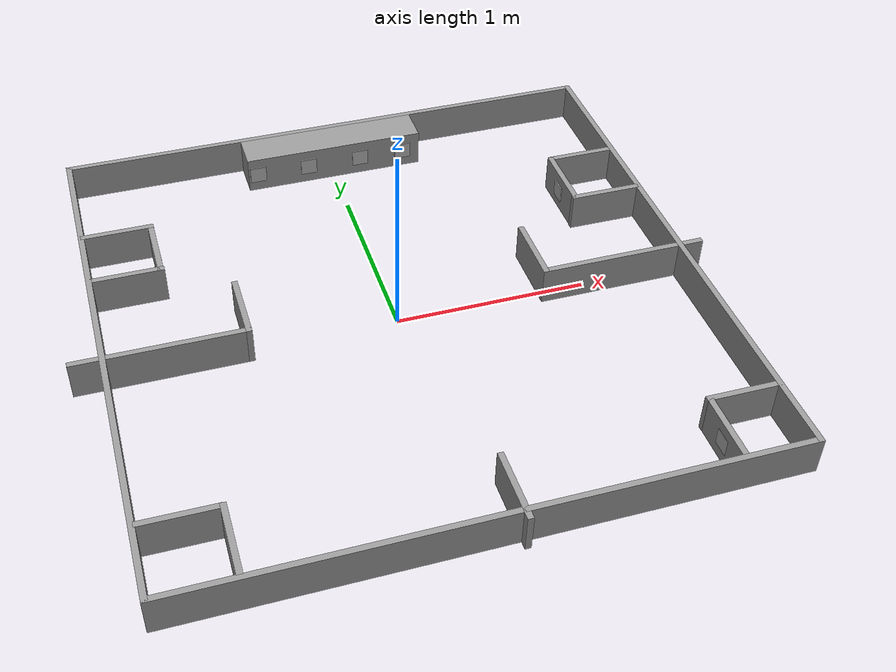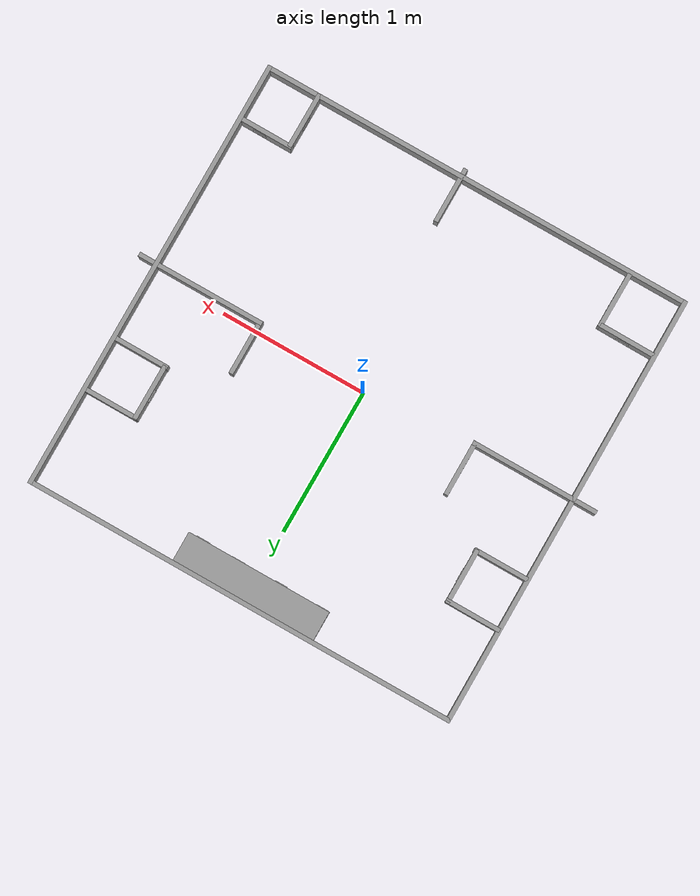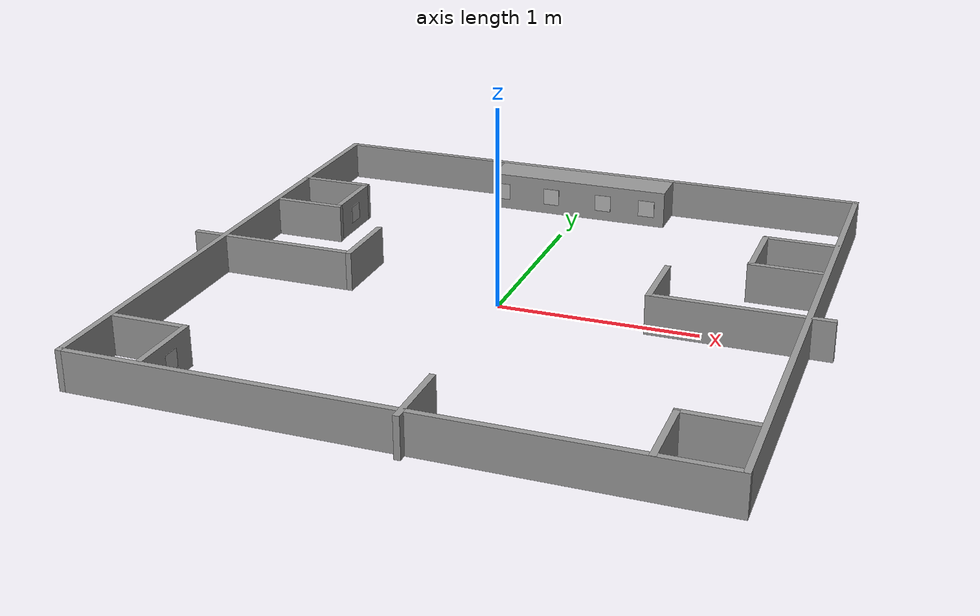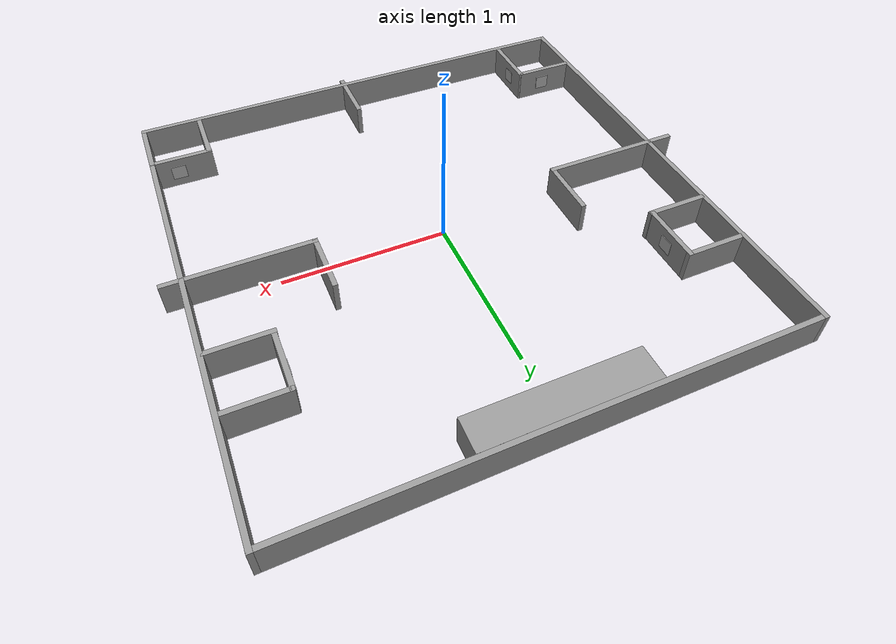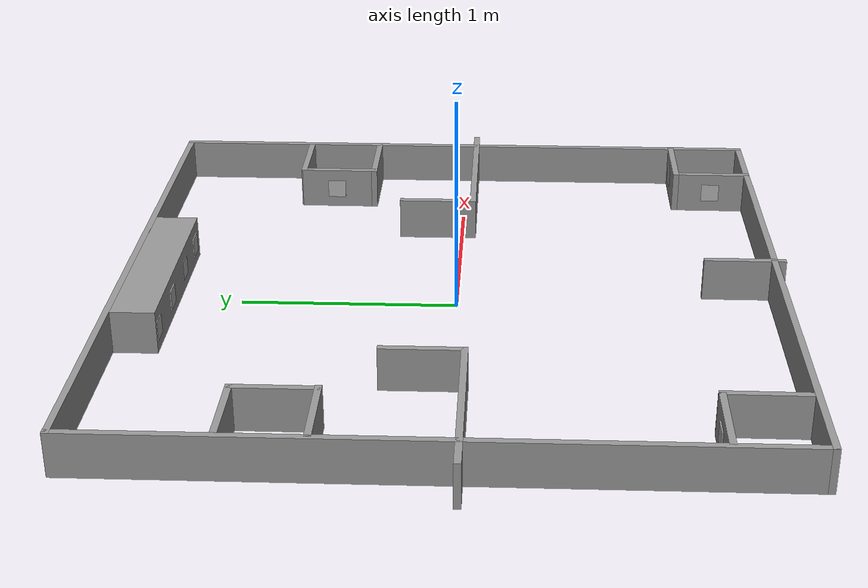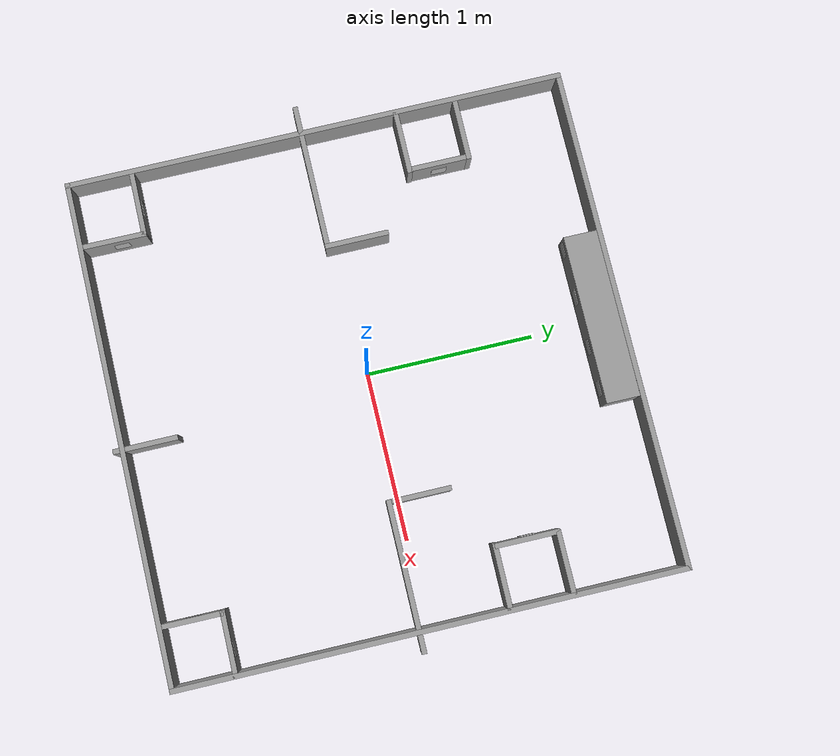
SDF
<sdf version="1.6">
 <model name="course">
  <link name="Wall_11">
   <pose>-0.764031 0.114894 0 0 0 -1.5708</pose>
   <visual name="Wall_11_Visual">
    <pose>0 0 0.1 0 -0 0</pose>
    <geometry><box><size>0.380343 0.03 0.2</size></box></geometry>
    <material>
     <script><uri>file://media/materials/scripts/gazebo.material</uri><name>Gazebo/Grey</name></script>
     <ambient>1 1 1 1</ambient>
     <diffuse>0.7 0.7 0.7 1</diffuse>
     <specular>0.01 0.01 0.01 1</specular>
     <emissive>0 0 0 1</emissive>
    </material>
   </visual>
   <collision name="Wall_11_Collision">
    <pose>0 0 0.1 0 -0 0</pose>
    <geometry><box><size>0.380343 0.03 0.2</size></box></geometry>
    <surface>
     <friction>
      <ode><mu>1</mu><mu2>1</mu2><fdir1>0 0 0</fdir1><slip1>0</slip1><slip2>0</slip2></ode>
      <torsional>
       <coefficient>1</coefficient>
       <patch_radius>0</patch_radius>
       <surface_radius>0</surface_radius>
       <use_patch_radius>1</use_patch_radius>
       <ode><slip>0</slip></ode>
      </torsional>
     </friction>
     <bounce><restitution_coefficient>0</restitution_coefficient><threshold>1e+06</threshold></bounce>
     <contact>
      <collide_without_contact>0</collide_without_contact>
      <collide_without_contact_bitmask>1</collide_without_contact_bitmask>
      <collide_bitmask>1</collide_bitmask>
      <ode>
       <soft_cfm>0</soft_cfm>
       <soft_erp>0.2</soft_erp>
       <kp>1e+13</kp>
       <kd>1</kd>
       <max_vel>0.01</max_vel>
       <min_depth>0</min_depth>
      </ode>
      <bullet>
       <split_impulse>1</split_impulse>
       <split_impulse_penetration_threshold>-0.01</split_impulse_penetration_threshold>
       <soft_cfm>0</soft_cfm>
       <soft_erp>0.2</soft_erp>
       <kp>1e+13</kp>
       <kd>1</kd>
      </bullet>
     </contact>
    </surface>
   </collision>
  </link>
  <link name="Wall_11_clone">
   <pose>-1.27339 0.511234 0 0 0 -0.0008</pose>
   <visual name="Wall_11_Visual">
    <pose>0 0 0.1 0 -0 0</pose>
    <geometry><box><size>0.380343 0.03 0.2</size></box></geometry>
    <material>
     <script><uri>file://media/materials/scripts/gazebo.material</uri><name>Gazebo/Grey</name></script>
     <ambient>1 1 1 1</ambient>
     <diffuse>0.7 0.7 0.7 1</diffuse>
     <specular>0.01 0.01 0.01 1</specular>
     <emissive>0 0 0 1</emissive>
     <shader type="pixel"/>
    </material>
   </visual>
   <collision name="Wall_11_Collision">
    <pose>0 0 0.1 0 -0 0</pose>
    <geometry><box><size>0.380343 0.03 0.2</size></box></geometry>
    <surface>
     <friction>
      <ode><mu>1</mu><mu2>1</mu2><fdir1>0 0 0</fdir1><slip1>0</slip1><slip2>0</slip2></ode>
      <torsional>
       <coefficient>1</coefficient>
       <patch_radius>0</patch_radius>
       <surface_radius>0</surface_radius>
       <use_patch_radius>1</use_patch_radius>
       <ode><slip>0</slip></ode>
      </torsional>
     </friction>
     <bounce><restitution_coefficient>0</restitution_coefficient><threshold>1e+06</threshold></bounce>
     <contact>
      <collide_without_contact>0</collide_without_contact>
      <collide_without_contact_bitmask>1</collide_without_contact_bitmask>
      <collide_bitmask>1</collide_bitmask>
      <ode>
       <soft_cfm>0</soft_cfm>
       <soft_erp>0.2</soft_erp>
       <kp>1e+13</kp>
       <kd>1</kd>
       <max_vel>0.01</max_vel>
       <min_depth>0</min_depth>
      </ode>
      <bullet>
       <split_impulse>1</split_impulse>
       <split_impulse_penetration_threshold>-0.01</split_impulse_penetration_threshold>
       <soft_cfm>0</soft_cfm>
       <soft_erp>0.2</soft_erp>
       <kp>1e+13</kp>
       <kd>1</kd>
      </bullet>
     </contact>
    </surface>
   </collision>
  </link>
  <link name="Wall_11_clone_clone">
   <pose>-1.10256 0.692997 0 0 -0 1.5692</pose>
   <visual name="Wall_11_Visual">
    <pose>0 0 0.1 0 -0 0</pose>
    <geometry><box><size>0.380343 0.03 0.2</size></box></geometry>
    <material>
     <script><uri>file://media/materials/scripts/gazebo.material</uri><name>Gazebo/Grey</name></script>
     <ambient>1 1 1 1</ambient>
     <diffuse>0.7 0.7 0.7 1</diffuse>
     <specular>0.01 0.01 0.01 1</specular>
     <emissive>0 0 0 1</emissive>
     <shader type="pixel"/>
    </material>
   </visual>
   <collision name="Wall_11_Collision">
    <pose>0 0 0.1 0 -0 0</pose>
    <geometry><box><size>0.380343 0.03 0.2</size></box></geometry>
    <surface>
     <friction>
      <ode><mu>1</mu><mu2>1</mu2><fdir1>0 0 0</fdir1><slip1>0</slip1><slip2>0</slip2></ode>
      <torsional>
       <coefficient>1</coefficient>
       <patch_radius>0</patch_radius>
       <surface_radius>0</surface_radius>
       <use_patch_radius>1</use_patch_radius>
       <ode><slip>0</slip></ode>
      </torsional>
     </friction>
     <bounce><restitution_coefficient>0</restitution_coefficient><threshold>1e+06</threshold></bounce>
     <contact>
      <collide_without_contact>0</collide_without_contact>
      <collide_without_contact_bitmask>1</collide_without_contact_bitmask>
      <collide_bitmask>1</collide_bitmask>
      <ode>
       <soft_cfm>0</soft_cfm>
       <soft_erp>0.2</soft_erp>
       <kp>1e+13</kp>
       <kd>1</kd>
       <max_vel>0.01</max_vel>
       <min_depth>0</min_depth>
      </ode>
      <bullet>
       <split_impulse>1</split_impulse>
       <split_impulse_penetration_threshold>-0.01</split_impulse_penetration_threshold>
       <soft_cfm>0</soft_cfm>
       <soft_erp>0.2</soft_erp>
       <kp>1e+13</kp>
       <kd>1</kd>
      </bullet>
     </contact>
    </surface>
   </collision>
  </link>
  <link name="Wall_11_clone_clone_clone">
   <pose>-1.27687 0.869348 0 0 -0 3.1392</pose>
   <visual name="Wall_11_Visual">
    <pose>0 0 0.1 0 -0 0</pose>
    <geometry><box><size>0.380343 0.03 0.2</size></box></geometry>
    <material>
     <script><uri>file://media/materials/scripts/gazebo.material</uri><name>Gazebo/Grey</name></script>
     <ambient>1 1 1 1</ambient>
     <diffuse>0.7 0.7 0.7 1</diffuse>
     <specular>0.01 0.01 0.01 1</specular>
     <emissive>0 0 0 1</emissive>
     <shader type="pixel"/>
    </material>
   </visual>
   <collision name="Wall_11_Collision">
    <pose>0 0 0.1 0 -0 0</pose>
    <geometry><box><size>0.380343 0.03 0.2</size></box></geometry>
    <surface>
     <friction>
      <ode><mu>1</mu><mu2>1</mu2><fdir1>0 0 0</fdir1><slip1>0</slip1><slip2>0</slip2></ode>
      <torsional>
       <coefficient>1</coefficient>
       <patch_radius>0</patch_radius>
       <surface_radius>0</surface_radius>
       <use_patch_radius>1</use_patch_radius>
       <ode><slip>0</slip></ode>
      </torsional>
     </friction>
     <bounce><restitution_coefficient>0</restitution_coefficient><threshold>1e+06</threshold></bounce>
     <contact>
      <collide_without_contact>0</collide_without_contact>
      <collide_without_contact_bitmask>1</collide_without_contact_bitmask>
      <collide_bitmask>1</collide_bitmask>
      <ode>
       <soft_cfm>0</soft_cfm>
       <soft_erp>0.2</soft_erp>
       <kp>1e+13</kp>
       <kd>1</kd>
       <max_vel>0.01</max_vel>
       <min_depth>0</min_depth>
      </ode>
      <bullet>
       <split_impulse>1</split_impulse>
       <split_impulse_penetration_threshold>-0.01</split_impulse_penetration_threshold>
       <soft_cfm>0</soft_cfm>
       <soft_erp>0.2</soft_erp>
       <kp>1e+13</kp>
       <kd>1</kd>
      </bullet>
     </contact>
    </surface>
   </collision>
  </link>
  <link name="Wall_11_clone_clone_clone_0">
   <pose>1.32098 0.840435 0 0 -0 3.1392</pose>
   <visual name="Wall_11_Visual">
    <pose>0 0 0.1 0 -0 0</pose>
    <geometry><box><size>0.380343 0.03 0.2</size></box></geometry>
    <material>
     <script><uri>file://media/materials/scripts/gazebo.material</uri><name>Gazebo/Grey</name></script>
     <ambient>1 1 1 1</ambient>
     <diffuse>0.7 0.7 0.7 1</diffuse>
     <specular>0.01 0.01 0.01 1</specular>
     <emissive>0 0 0 1</emissive>
     <shader type="pixel"/>
    </material>
   </visual>
   <collision name="Wall_11_Collision">
    <pose>0 0 0.1 0 -0 0</pose>
    <geometry><box><size>0.380343 0.03 0.2</size></box></geometry>
    <surface>
     <friction>
      <ode><mu>1</mu><mu2>1</mu2><fdir1>0 0 0</fdir1><slip1>0</slip1><slip2>0</slip2></ode>
      <torsional>
       <coefficient>1</coefficient>
       <patch_radius>0</patch_radius>
       <surface_radius>0</surface_radius>
       <use_patch_radius>1</use_patch_radius>
       <ode><slip>0</slip></ode>
      </torsional>
     </friction>
     <bounce><restitution_coefficient>0</restitution_coefficient><threshold>1e+06</threshold></bounce>
     <contact>
      <collide_without_contact>0</collide_without_contact>
      <collide_without_contact_bitmask>1</collide_without_contact_bitmask>
      <collide_bitmask>1</collide_bitmask>
      <ode>
       <soft_cfm>0</soft_cfm>
       <soft_erp>0.2</soft_erp>
       <kp>1e+13</kp>
       <kd>1</kd>
       <max_vel>0.01</max_vel>
       <min_depth>0</min_depth>
      </ode>
      <bullet>
       <split_impulse>1</split_impulse>
       <split_impulse_penetration_threshold>-0.01</split_impulse_penetration_threshold>
       <soft_cfm>0</soft_cfm>
       <soft_erp>0.2</soft_erp>
       <kp>1e+13</kp>
       <kd>1</kd>
      </bullet>
     </contact>
    </surface>
   </collision>
  </link>
  <link name="Wall_11_clone_clone_clone_clone">
   <pose>1.14091 0.66035 0 0 0 -1.57398</pose>
   <visual name="Wall_11_Visual">
    <pose>0 0 0.1 0 -0 0</pose>
    <geometry><box><size>0.380343 0.03 0.2</size></box></geometry>
    <material>
     <script><uri>file://media/materials/scripts/gazebo.material</uri><name>Gazebo/Grey</name></script>
     <ambient>1 1 1 1</ambient>
     <diffuse>0.7 0.7 0.7 1</diffuse>
     <specular>0.01 0.01 0.01 1</specular>
     <emissive>0 0 0 1</emissive>
     <shader type="pixel"/>
    </material>
   </visual>
   <collision name="Wall_11_Collision">
    <pose>0 0 0.1 0 -0 0</pose>
    <geometry><box><size>0.380343 0.03 0.2</size></box></geometry>
    <surface>
     <friction>
      <ode><mu>1</mu><mu2>1</mu2><fdir1>0 0 0</fdir1><slip1>0</slip1><slip2>0</slip2></ode>
      <torsional>
       <coefficient>1</coefficient>
       <patch_radius>0</patch_radius>
       <surface_radius>0</surface_radius>
       <use_patch_radius>1</use_patch_radius>
       <ode><slip>0</slip></ode>
      </torsional>
     </friction>
     <bounce><restitution_coefficient>0</restitution_coefficient><threshold>1e+06</threshold></bounce>
     <contact>
      <collide_without_contact>0</collide_without_contact>
      <collide_without_contact_bitmask>1</collide_without_contact_bitmask>
      <collide_bitmask>1</collide_bitmask>
      <ode>
       <soft_cfm>0</soft_cfm>
       <soft_erp>0.2</soft_erp>
       <kp>1e+13</kp>
       <kd>1</kd>
       <max_vel>0.01</max_vel>
       <min_depth>0</min_depth>
      </ode>
      <bullet>
       <split_impulse>1</split_impulse>
       <split_impulse_penetration_threshold>-0.01</split_impulse_penetration_threshold>
       <soft_cfm>0</soft_cfm>
       <soft_erp>0.2</soft_erp>
       <kp>1e+13</kp>
       <kd>1</kd>
      </bullet>
     </contact>
    </surface>
   </collision>
  </link>
  <link name="Wall_11_clone_clone_clone_clone_clone">
   <pose>1.31241 0.473395 0 0 0 -0.00398</pose>
   <visual name="Wall_11_Visual">
    <pose>0 0 0.1 0 -0 0</pose>
    <geometry><box><size>0.380343 0.03 0.2</size></box></geometry>
    <material>
     <script><uri>file://media/materials/scripts/gazebo.material</uri><name>Gazebo/Grey</name></script>
     <ambient>1 1 1 1</ambient>
     <diffuse>0.7 0.7 0.7 1</diffuse>
     <specular>0.01 0.01 0.01 1</specular>
     <emissive>0 0 0 1</emissive>
     <shader type="pixel"/>
    </material>
   </visual>
   <collision name="Wall_11_Collision">
    <pose>0 0 0.1 0 -0 0</pose>
    <geometry><box><size>0.380343 0.03 0.2</size></box></geometry>
    <surface>
     <friction>
      <ode><mu>1</mu><mu2>1</mu2><fdir1>0 0 0</fdir1><slip1>0</slip1><slip2>0</slip2></ode>
      <torsional>
       <coefficient>1</coefficient>
       <patch_radius>0</patch_radius>
       <surface_radius>0</surface_radius>
       <use_patch_radius>1</use_patch_radius>
       <ode><slip>0</slip></ode>
      </torsional>
     </friction>
     <bounce><restitution_coefficient>0</restitution_coefficient><threshold>1e+06</threshold></bounce>
     <contact>
      <collide_without_contact>0</collide_without_contact>
      <collide_without_contact_bitmask>1</collide_without_contact_bitmask>
      <collide_bitmask>1</collide_bitmask>
      <ode>
       <soft_cfm>0</soft_cfm>
       <soft_erp>0.2</soft_erp>
       <kp>1e+13</kp>
       <kd>1</kd>
       <max_vel>0.01</max_vel>
       <min_depth>0</min_depth>
      </ode>
      <bullet>
       <split_impulse>1</split_impulse>
       <split_impulse_penetration_threshold>-0.01</split_impulse_penetration_threshold>
       <soft_cfm>0</soft_cfm>
       <soft_erp>0.2</soft_erp>
       <kp>1e+13</kp>
       <kd>1</kd>
      </bullet>
     </contact>
    </surface>
   </collision>
  </link>
  <link name="Wall_11_clone_clone_clone_clone_clone_clone">
   <pose>1.15084 -1.2876 0 0 -0 1.56602</pose>
   <visual name="Wall_11_Visual">
    <pose>0 0 0.1 0 -0 0</pose>
    <geometry><box><size>0.380343 0.03 0.2</size></box></geometry>
    <material>
     <script><uri>file://media/materials/scripts/gazebo.material</uri><name>Gazebo/Grey</name></script>
     <ambient>1 1 1 1</ambient>
     <diffuse>0.7 0.7 0.7 1</diffuse>
     <specular>0.01 0.01 0.01 1</specular>
     <emissive>0 0 0 1</emissive>
     <shader type="pixel"/>
    </material>
   </visual>
   <collision name="Wall_11_Collision">
    <pose>0 0 0.1 0 -0 0</pose>
    <geometry><box><size>0.380343 0.03 0.2</size></box></geometry>
    <surface>
     <friction>
      <ode><mu>1</mu><mu2>1</mu2><fdir1>0 0 0</fdir1><slip1>0</slip1><slip2>0</slip2></ode>
      <torsional>
       <coefficient>1</coefficient>
       <patch_radius>0</patch_radius>
       <surface_radius>0</surface_radius>
       <use_patch_radius>1</use_patch_radius>
       <ode><slip>0</slip></ode>
      </torsional>
     </friction>
     <bounce><restitution_coefficient>0</restitution_coefficient><threshold>1e+06</threshold></bounce>
     <contact>
      <collide_without_contact>0</collide_without_contact>
      <collide_without_contact_bitmask>1</collide_without_contact_bitmask>
      <collide_bitmask>1</collide_bitmask>
      <ode>
       <soft_cfm>0</soft_cfm>
       <soft_erp>0.2</soft_erp>
       <kp>1e+13</kp>
       <kd>1</kd>
       <max_vel>0.01</max_vel>
       <min_depth>0</min_depth>
      </ode>
      <bullet>
       <split_impulse>1</split_impulse>
       <split_impulse_penetration_threshold>-0.01</split_impulse_penetration_threshold>
       <soft_cfm>0</soft_cfm>
       <soft_erp>0.2</soft_erp>
       <kp>1e+13</kp>
       <kd>1</kd>
      </bullet>
     </contact>
    </surface>
   </collision>
  </link>
  <link name="Wall_11_clone_clone_clone_clone_clone_clone_clone">
   <pose>1.32573 -1.10236 0 0 -0 3.13602</pose>
   <visual name="Wall_11_Visual">
    <pose>0 0 0.1 0 -0 0</pose>
    <geometry><box><size>0.380343 0.03 0.2</size></box></geometry>
    <material>
     <script><uri>file://media/materials/scripts/gazebo.material</uri><name>Gazebo/Grey</name></script>
     <ambient>1 1 1 1</ambient>
     <diffuse>0.7 0.7 0.7 1</diffuse>
     <specular>0.01 0.01 0.01 1</specular>
     <emissive>0 0 0 1</emissive>
     <shader type="pixel"/>
    </material>
   </visual>
   <collision name="Wall_11_Collision">
    <pose>0 0 0.1 0 -0 0</pose>
    <geometry><box><size>0.380343 0.03 0.2</size></box></geometry>
    <surface>
     <friction>
      <ode><mu>1</mu><mu2>1</mu2><fdir1>0 0 0</fdir1><slip1>0</slip1><slip2>0</slip2></ode>
      <torsional>
       <coefficient>1</coefficient>
       <patch_radius>0</patch_radius>
       <surface_radius>0</surface_radius>
       <use_patch_radius>1</use_patch_radius>
       <ode><slip>0</slip></ode>
      </torsional>
     </friction>
     <bounce><restitution_coefficient>0</restitution_coefficient><threshold>1e+06</threshold></bounce>
     <contact>
      <collide_without_contact>0</collide_without_contact>
      <collide_without_contact_bitmask>1</collide_without_contact_bitmask>
      <collide_bitmask>1</collide_bitmask>
      <ode>
       <soft_cfm>0</soft_cfm>
       <soft_erp>0.2</soft_erp>
       <kp>1e+13</kp>
       <kd>1</kd>
       <max_vel>0.01</max_vel>
       <min_depth>0</min_depth>
      </ode>
      <bullet>
       <split_impulse>1</split_impulse>
       <split_impulse_penetration_threshold>-0.01</split_impulse_penetration_threshold>
       <soft_cfm>0</soft_cfm>
       <soft_erp>0.2</soft_erp>
       <kp>1e+13</kp>
       <kd>1</kd>
      </bullet>
     </contact>
    </surface>
   </collision>
  </link>
  <link name="Wall_11_clone_clone_clone_clone_clone_clone_clone_clone">
   <pose>-1.07993 -1.26306 0 0 0 -1.57716</pose>
   <visual name="Wall_11_Visual">
    <pose>0 0 0.1 0 -0 0</pose>
    <geometry><box><size>0.380343 0.03 0.2</size></box></geometry>
    <material>
     <script><uri>file://media/materials/scripts/gazebo.material</uri><name>Gazebo/Grey</name></script>
     <ambient>1 1 1 1</ambient>
     <diffuse>0.7 0.7 0.7 1</diffuse>
     <specular>0.01 0.01 0.01 1</specular>
     <emissive>0 0 0 1</emissive>
     <shader type="pixel"/>
    </material>
   </visual>
   <collision name="Wall_11_Collision">
    <pose>0 0 0.1 0 -0 0</pose>
    <geometry><box><size>0.380343 0.03 0.2</size></box></geometry>
    <surface>
     <friction>
      <ode><mu>1</mu><mu2>1</mu2><fdir1>0 0 0</fdir1><slip1>0</slip1><slip2>0</slip2></ode>
      <torsional>
       <coefficient>1</coefficient>
       <patch_radius>0</patch_radius>
       <surface_radius>0</surface_radius>
       <use_patch_radius>1</use_patch_radius>
       <ode><slip>0</slip></ode>
      </torsional>
     </friction>
     <bounce><restitution_coefficient>0</restitution_coefficient><threshold>1e+06</threshold></bounce>
     <contact>
      <collide_without_contact>0</collide_without_contact>
      <collide_without_contact_bitmask>1</collide_without_contact_bitmask>
      <collide_bitmask>1</collide_bitmask>
      <ode>
       <soft_cfm>0</soft_cfm>
       <soft_erp>0.2</soft_erp>
       <kp>1e+13</kp>
       <kd>1</kd>
       <max_vel>0.01</max_vel>
       <min_depth>0</min_depth>
      </ode>
      <bullet>
       <split_impulse>1</split_impulse>
       <split_impulse_penetration_threshold>-0.01</split_impulse_penetration_threshold>
       <soft_cfm>0</soft_cfm>
       <soft_erp>0.2</soft_erp>
       <kp>1e+13</kp>
       <kd>1</kd>
      </bullet>
     </contact>
    </surface>
   </collision>
  </link>
  <link name="Wall_11_clone_clone_clone_clone_clone_clone_clone_clone_clone">
   <pose>-1.26695 -1.08537 0 0 0 -0.00716</pose>
   <visual name="Wall_11_Visual">
    <pose>0 0 0.1 0 -0 0</pose>
    <geometry><box><size>0.380343 0.03 0.2</size></box></geometry>
    <material>
     <script><uri>file://media/materials/scripts/gazebo.material</uri><name>Gazebo/Grey</name></script>
     <ambient>1 1 1 1</ambient>
     <diffuse>0.7 0.7 0.7 1</diffuse>
     <specular>0.01 0.01 0.01 1</specular>
     <emissive>0 0 0 1</emissive>
     <shader type="pixel"/>
    </material>
   </visual>
   <collision name="Wall_11_Collision">
    <pose>0 0 0.1 0 -0 0</pose>
    <geometry><box><size>0.380343 0.03 0.2</size></box></geometry>
    <surface>
     <friction>
      <ode><mu>1</mu><mu2>1</mu2><fdir1>0 0 0</fdir1><slip1>0</slip1><slip2>0</slip2></ode>
      <torsional>
       <coefficient>1</coefficient>
       <patch_radius>0</patch_radius>
       <surface_radius>0</surface_radius>
       <use_patch_radius>1</use_patch_radius>
       <ode><slip>0</slip></ode>
      </torsional>
     </friction>
     <bounce><restitution_coefficient>0</restitution_coefficient><threshold>1e+06</threshold></bounce>
     <contact>
      <collide_without_contact>0</collide_without_contact>
      <collide_without_contact_bitmask>1</collide_without_contact_bitmask>
      <collide_bitmask>1</collide_bitmask>
      <ode>
       <soft_cfm>0</soft_cfm>
       <soft_erp>0.2</soft_erp>
       <kp>1e+13</kp>
       <kd>1</kd>
       <max_vel>0.01</max_vel>
       <min_depth>0</min_depth>
      </ode>
      <bullet>
       <split_impulse>1</split_impulse>
       <split_impulse_penetration_threshold>-0.01</split_impulse_penetration_threshold>
       <soft_cfm>0</soft_cfm>
       <soft_erp>0.2</soft_erp>
       <kp>1e+13</kp>
       <kd>1</kd>
      </bullet>
     </contact>
    </surface>
   </collision>
  </link>
  <link name="Wall_12">
   <pose>-1.18903 -0.060106 0 0 -0 3.14159</pose>
   <visual name="Wall_12_Visual">
    <pose>0 0 0.1 0 -0 0</pose>
    <geometry><box><size>0.879643 0.03 0.2</size></box></geometry>
    <material>
     <script><uri>file://media/materials/scripts/gazebo.material</uri><name>Gazebo/Grey</name></script>
     <ambient>1 1 1 1</ambient>
     <diffuse>0.7 0.7 0.7 1</diffuse>
     <specular>0.01 0.01 0.01 1</specular>
     <emissive>0 0 0 1</emissive>
    </material>
   </visual>
   <collision name="Wall_12_Collision">
    <pose>0 0 0.1 0 -0 0</pose>
    <geometry><box><size>0.879643 0.03 0.2</size></box></geometry>
    <surface>
     <friction>
      <ode><mu>1</mu><mu2>1</mu2><fdir1>0 0 0</fdir1><slip1>0</slip1><slip2>0</slip2></ode>
      <torsional>
       <coefficient>1</coefficient>
       <patch_radius>0</patch_radius>
       <surface_radius>0</surface_radius>
       <use_patch_radius>1</use_patch_radius>
       <ode><slip>0</slip></ode>
      </torsional>
     </friction>
     <bounce><restitution_coefficient>0</restitution_coefficient><threshold>1e+06</threshold></bounce>
     <contact>
      <collide_without_contact>0</collide_without_contact>
      <collide_without_contact_bitmask>1</collide_without_contact_bitmask>
      <collide_bitmask>1</collide_bitmask>
      <ode>
       <soft_cfm>0</soft_cfm>
       <soft_erp>0.2</soft_erp>
       <kp>1e+13</kp>
       <kd>1</kd>
       <max_vel>0.01</max_vel>
       <min_depth>0</min_depth>
      </ode>
      <bullet>
       <split_impulse>1</split_impulse>
       <split_impulse_penetration_threshold>-0.01</split_impulse_penetration_threshold>
       <soft_cfm>0</soft_cfm>
       <soft_erp>0.2</soft_erp>
       <kp>1e+13</kp>
       <kd>1</kd>
      </bullet>
     </contact>
    </surface>
   </collision>
  </link>
  <link name="Wall_14">
   <pose>0.763969 0.121894 0 0 0 -1.5708</pose>
   <visual name="Wall_14_Visual">
    <pose>0 0 0.1 0 -0 0</pose>
    <geometry><box><size>0.379782 0.03 0.2</size></box></geometry>
    <material>
     <script><uri>file://media/materials/scripts/gazebo.material</uri><name>Gazebo/Grey</name></script>
     <ambient>1 1 1 1</ambient>
     <diffuse>0.7 0.7 0.7 1</diffuse>
     <specular>0.01 0.01 0.01 1</specular>
     <emissive>0 0 0 1</emissive>
    </material>
   </visual>
   <collision name="Wall_14_Collision">
    <pose>0 0 0.1 0 -0 0</pose>
    <geometry><box><size>0.379782 0.03 0.2</size></box></geometry>
    <surface>
     <friction>
      <ode><mu>1</mu><mu2>1</mu2><fdir1>0 0 0</fdir1><slip1>0</slip1><slip2>0</slip2></ode>
      <torsional>
       <coefficient>1</coefficient>
       <patch_radius>0</patch_radius>
       <surface_radius>0</surface_radius>
       <use_patch_radius>1</use_patch_radius>
       <ode><slip>0</slip></ode>
      </torsional>
     </friction>
     <bounce><restitution_coefficient>0</restitution_coefficient><threshold>1e+06</threshold></bounce>
     <contact>
      <collide_without_contact>0</collide_without_contact>
      <collide_without_contact_bitmask>1</collide_without_contact_bitmask>
      <collide_bitmask>1</collide_bitmask>
      <ode>
       <soft_cfm>0</soft_cfm>
       <soft_erp>0.2</soft_erp>
       <kp>1e+13</kp>
       <kd>1</kd>
       <max_vel>0.01</max_vel>
       <min_depth>0</min_depth>
      </ode>
      <bullet>
       <split_impulse>1</split_impulse>
       <split_impulse_penetration_threshold>-0.01</split_impulse_penetration_threshold>
       <soft_cfm>0</soft_cfm>
       <soft_erp>0.2</soft_erp>
       <kp>1e+13</kp>
       <kd>1</kd>
      </bullet>
     </contact>
    </surface>
   </collision>
  </link>
  <link name="Wall_15">
   <pose>1.18897 -0.053106 0 0 -0 0</pose>
   <visual name="Wall_15_Visual">
    <pose>0 0 0.1 0 -0 0</pose>
    <geometry><box><size>0.879767 0.03 0.2</size></box></geometry>
    <material>
     <script><uri>file://media/materials/scripts/gazebo.material</uri><name>Gazebo/Grey</name></script>
     <ambient>1 1 1 1</ambient>
     <diffuse>0.7 0.7 0.7 1</diffuse>
     <specular>0.01 0.01 0.01 1</specular>
     <emissive>0 0 0 1</emissive>
    </material>
   </visual>
   <collision name="Wall_15_Collision">
    <pose>0 0 0.1 0 -0 0</pose>
    <geometry><box><size>0.879767 0.03 0.2</size></box></geometry>
    <surface>
     <friction>
      <ode><mu>1</mu><mu2>1</mu2><fdir1>0 0 0</fdir1><slip1>0</slip1><slip2>0</slip2></ode>
      <torsional>
       <coefficient>1</coefficient>
       <patch_radius>0</patch_radius>
       <surface_radius>0</surface_radius>
       <use_patch_radius>1</use_patch_radius>
       <ode><slip>0</slip></ode>
      </torsional>
     </friction>
     <bounce><restitution_coefficient>0</restitution_coefficient><threshold>1e+06</threshold></bounce>
     <contact>
      <collide_without_contact>0</collide_without_contact>
      <collide_without_contact_bitmask>1</collide_without_contact_bitmask>
      <collide_bitmask>1</collide_bitmask>
      <ode>
       <soft_cfm>0</soft_cfm>
       <soft_erp>0.2</soft_erp>
       <kp>1e+13</kp>
       <kd>1</kd>
       <max_vel>0.01</max_vel>
       <min_depth>0</min_depth>
      </ode>
      <bullet>
       <split_impulse>1</split_impulse>
       <split_impulse_penetration_threshold>-0.01</split_impulse_penetration_threshold>
       <soft_cfm>0</soft_cfm>
       <soft_erp>0.2</soft_erp>
       <kp>1e+13</kp>
       <kd>1</kd>
      </bullet>
     </contact>
    </surface>
   </collision>
  </link>
  <link name="Wall_17">
   <pose>0.128969 -1.33011 0 0 0 -1.5708</pose>
   <visual name="Wall_17_Visual">
    <pose>0 0 0.1 0 -0 0</pose>
    <geometry><box><size>0.379578 0.03 0.2</size></box></geometry>
    <material>
     <script><uri>file://media/materials/scripts/gazebo.material</uri><name>Gazebo/Grey</name></script>
     <ambient>1 1 1 1</ambient>
     <diffuse>0.7 0.7 0.7 1</diffuse>
     <specular>0.01 0.01 0.01 1</specular>
     <emissive>0 0 0 1</emissive>
    </material>
   </visual>
   <collision name="Wall_17_Collision">
    <pose>0 0 0.1 0 -0 0</pose>
    <geometry><box><size>0.379578 0.03 0.2</size></box></geometry>
    <surface>
     <friction>
      <ode><mu>1</mu><mu2>1</mu2><fdir1>0 0 0</fdir1><slip1>0</slip1><slip2>0</slip2></ode>
      <torsional>
       <coefficient>1</coefficient>
       <patch_radius>0</patch_radius>
       <surface_radius>0</surface_radius>
       <use_patch_radius>1</use_patch_radius>
       <ode><slip>0</slip></ode>
      </torsional>
     </friction>
     <bounce><restitution_coefficient>0</restitution_coefficient><threshold>1e+06</threshold></bounce>
     <contact>
      <collide_without_contact>0</collide_without_contact>
      <collide_without_contact_bitmask>1</collide_without_contact_bitmask>
      <collide_bitmask>1</collide_bitmask>
      <ode>
       <soft_cfm>0</soft_cfm>
       <soft_erp>0.2</soft_erp>
       <kp>1e+13</kp>
       <kd>1</kd>
       <max_vel>0.01</max_vel>
       <min_depth>0</min_depth>
      </ode>
      <bullet>
       <split_impulse>1</split_impulse>
       <split_impulse_penetration_threshold>-0.01</split_impulse_penetration_threshold>
       <soft_cfm>0</soft_cfm>
       <soft_erp>0.2</soft_erp>
       <kp>1e+13</kp>
       <kd>1</kd>
      </bullet>
     </contact>
    </surface>
   </collision>
  </link>
  <link name="Wall_2">
   <pose>1.50597 0.019894 0 0 0 -1.5708</pose>
   <visual name="Wall_2_Visual">
    <pose>0 0 0.1 0 -0 0</pose>
    <geometry><box><size>3 0.03 0.2</size></box></geometry>
    <material>
     <script><uri>file://media/materials/scripts/gazebo.material</uri><name>Gazebo/Grey</name></script>
     <ambient>1 1 1 1</ambient>
     <diffuse>0.7 0.7 0.7 1</diffuse>
     <specular>0.01 0.01 0.01 1</specular>
     <emissive>0 0 0 1</emissive>
    </material>
   </visual>
   <collision name="Wall_2_Collision">
    <pose>0 0 0.1 0 -0 0</pose>
    <geometry><box><size>3 0.03 0.2</size></box></geometry>
    <surface>
     <friction>
      <ode><mu>1</mu><mu2>1</mu2><fdir1>0 0 0</fdir1><slip1>0</slip1><slip2>0</slip2></ode>
      <torsional>
       <coefficient>1</coefficient>
       <patch_radius>0</patch_radius>
       <surface_radius>0</surface_radius>
       <use_patch_radius>1</use_patch_radius>
       <ode><slip>0</slip></ode>
      </torsional>
     </friction>
     <bounce><restitution_coefficient>0</restitution_coefficient><threshold>1e+06</threshold></bounce>
     <contact>
      <collide_without_contact>0</collide_without_contact>
      <collide_without_contact_bitmask>1</collide_without_contact_bitmask>
      <collide_bitmask>1</collide_bitmask>
      <ode>
       <soft_cfm>0</soft_cfm>
       <soft_erp>0.2</soft_erp>
       <kp>1e+13</kp>
       <kd>1</kd>
       <max_vel>0.01</max_vel>
       <min_depth>0</min_depth>
      </ode>
      <bullet>
       <split_impulse>1</split_impulse>
       <split_impulse_penetration_threshold>-0.01</split_impulse_penetration_threshold>
       <soft_cfm>0</soft_cfm>
       <soft_erp>0.2</soft_erp>
       <kp>1e+13</kp>
       <kd>1</kd>
      </bullet>
     </contact>
    </surface>
   </collision>
  </link>
  <link name="Wall_4">
   <pose>0.020969 -1.46511 0 0 -0 3.14159</pose>
   <visual name="Wall_4_Visual">
    <pose>0 0 0.1 0 -0 0</pose>
    <geometry><box><size>3 0.03 0.2</size></box></geometry>
    <material>
     <script><uri>file://media/materials/scripts/gazebo.material</uri><name>Gazebo/Grey</name></script>
     <ambient>1 1 1 1</ambient>
     <diffuse>0.7 0.7 0.7 1</diffuse>
     <specular>0.01 0.01 0.01 1</specular>
     <emissive>0 0 0 1</emissive>
    </material>
   </visual>
   <collision name="Wall_4_Collision">
    <pose>0 0 0.1 0 -0 0</pose>
    <geometry><box><size>3 0.03 0.2</size></box></geometry>
    <surface>
     <friction>
      <ode><mu>1</mu><mu2>1</mu2><fdir1>0 0 0</fdir1><slip1>0</slip1><slip2>0</slip2></ode>
      <torsional>
       <coefficient>1</coefficient>
       <patch_radius>0</patch_radius>
       <surface_radius>0</surface_radius>
       <use_patch_radius>1</use_patch_radius>
       <ode><slip>0</slip></ode>
      </torsional>
     </friction>
     <bounce><restitution_coefficient>0</restitution_coefficient><threshold>1e+06</threshold></bounce>
     <contact>
      <collide_without_contact>0</collide_without_contact>
      <collide_without_contact_bitmask>1</collide_without_contact_bitmask>
      <collide_bitmask>1</collide_bitmask>
      <ode>
       <soft_cfm>0</soft_cfm>
       <soft_erp>0.2</soft_erp>
       <kp>1e+13</kp>
       <kd>1</kd>
       <max_vel>0.01</max_vel>
       <min_depth>0</min_depth>
      </ode>
      <bullet>
       <split_impulse>1</split_impulse>
       <split_impulse_penetration_threshold>-0.01</split_impulse_penetration_threshold>
       <soft_cfm>0</soft_cfm>
       <soft_erp>0.2</soft_erp>
       <kp>1e+13</kp>
       <kd>1</kd>
      </bullet>
     </contact>
    </surface>
   </collision>
  </link>
  <link name="Wall_7">
   <pose>-1.46403 0.019894 0 0 -0 1.5708</pose>
   <visual name="Wall_7_Visual">
    <pose>0 0 0.1 0 -0 0</pose>
    <geometry><box><size>3 0.03 0.2</size></box></geometry>
    <material>
     <script><uri>file://media/materials/scripts/gazebo.material</uri><name>Gazebo/Grey</name></script>
     <ambient>1 1 1 1</ambient>
     <diffuse>0.7 0.7 0.7 1</diffuse>
     <specular>0.01 0.01 0.01 1</specular>
     <emissive>0 0 0 1</emissive>
    </material>
   </visual>
   <collision name="Wall_7_Collision">
    <pose>0 0 0.1 0 -0 0</pose>
    <geometry><box><size>3 0.03 0.2</size></box></geometry>
    <surface>
     <friction>
      <ode><mu>1</mu><mu2>1</mu2><fdir1>0 0 0</fdir1><slip1>0</slip1><slip2>0</slip2></ode>
      <torsional>
       <coefficient>1</coefficient>
       <patch_radius>0</patch_radius>
       <surface_radius>0</surface_radius>
       <use_patch_radius>1</use_patch_radius>
       <ode><slip>0</slip></ode>
      </torsional>
     </friction>
     <bounce><restitution_coefficient>0</restitution_coefficient><threshold>1e+06</threshold></bounce>
     <contact>
      <collide_without_contact>0</collide_without_contact>
      <collide_without_contact_bitmask>1</collide_without_contact_bitmask>
      <collide_bitmask>1</collide_bitmask>
      <ode>
       <soft_cfm>0</soft_cfm>
       <soft_erp>0.2</soft_erp>
       <kp>1e+13</kp>
       <kd>1</kd>
       <max_vel>0.01</max_vel>
       <min_depth>0</min_depth>
      </ode>
      <bullet>
       <split_impulse>1</split_impulse>
       <split_impulse_penetration_threshold>-0.01</split_impulse_penetration_threshold>
       <soft_cfm>0</soft_cfm>
       <soft_erp>0.2</soft_erp>
       <kp>1e+13</kp>
       <kd>1</kd>
      </bullet>
     </contact>
    </surface>
   </collision>
  </link>
  <link name="Wall_9">
   <pose>0.020969 1.50489 0 0 -0 0</pose>
   <visual name="Wall_9_Visual">
    <pose>0 0 0.1 0 -0 0</pose>
    <geometry><box><size>2.99951 0.03 0.2</size></box></geometry>
    <material>
     <script><uri>file://media/materials/scripts/gazebo.material</uri><name>Gazebo/Grey</name></script>
     <ambient>1 1 1 1</ambient>
     <diffuse>0.7 0.7 0.7 1</diffuse>
     <specular>0.01 0.01 0.01 1</specular>
     <emissive>0 0 0 1</emissive>
    </material>
   </visual>
   <collision name="Wall_9_Collision">
    <pose>0 0 0.1 0 -0 0</pose>
    <geometry><box><size>2.99951 0.03 0.2</size></box></geometry>
    <surface>
     <friction>
      <ode><mu>1</mu><mu2>1</mu2><fdir1>0 0 0</fdir1><slip1>0</slip1><slip2>0</slip2></ode>
      <torsional>
       <coefficient>1</coefficient>
       <patch_radius>0</patch_radius>
       <surface_radius>0</surface_radius>
       <use_patch_radius>1</use_patch_radius>
       <ode><slip>0</slip></ode>
      </torsional>
     </friction>
     <bounce><restitution_coefficient>0</restitution_coefficient><threshold>1e+06</threshold></bounce>
     <contact>
      <collide_without_contact>0</collide_without_contact>
      <collide_without_contact_bitmask>1</collide_without_contact_bitmask>
      <collide_bitmask>1</collide_bitmask>
      <ode>
       <soft_cfm>0</soft_cfm>
       <soft_erp>0.2</soft_erp>
       <kp>1e+13</kp>
       <kd>1</kd>
       <max_vel>0.01</max_vel>
       <min_depth>0</min_depth>
      </ode>
      <bullet>
       <split_impulse>1</split_impulse>
       <split_impulse_penetration_threshold>-0.01</split_impulse_penetration_threshold>
       <soft_cfm>0</soft_cfm>
       <soft_erp>0.2</soft_erp>
       <kp>1e+13</kp>
       <kd>1</kd>
      </bullet>
     </contact>
    </surface>
   </collision>
  </link>
  <link name="link_0">
   <pose>0.001107 1.39006 0.1 0 -0 1.57</pose>
   <inertial>
    <mass>1</mass>
    <inertia>
     <ixx>0.166667</ixx>
     <ixy>0</ixy>
     <ixz>0</ixz>
     <iyy>0.166667</iyy>
     <iyz>0</iyz>
     <izz>0.166667</izz>
    </inertia>
   </inertial>
   <visual name="visual">
    <geometry><box><size>0.2 1 0.2</size></box></geometry>
    <material>
     <lighting>1</lighting>
     <script><uri>file://media/materials/scripts/gazebo.material</uri><name>Gazebo/Grey</name></script>
     <ambient>0.3 0.3 0.3 1</ambient>
     <diffuse>0.7 0.7 0.7 1</diffuse>
     <specular>0.01 0.01 0.01 1</specular>
     <emissive>0 0 0 1</emissive>
     <shader type="vertex"><normal_map>__default__</normal_map></shader>
    </material>
   </visual>
   <collision name="collision">
    <geometry><box><size>0.2 1 0.2</size></box></geometry>
    <surface>
     <friction>
      <ode><mu>1</mu><mu2>1</mu2><fdir1>0 0 0</fdir1><slip1>0</slip1><slip2>0</slip2></ode>
      <torsional>
       <coefficient>1</coefficient>
       <patch_radius>0</patch_radius>
       <surface_radius>0</surface_radius>
       <use_patch_radius>1</use_patch_radius>
       <ode><slip>0</slip></ode>
      </torsional>
     </friction>
     <bounce><restitution_coefficient>0</restitution_coefficient><threshold>1e+06</threshold></bounce>
     <contact>
      <collide_without_contact>0</collide_without_contact>
      <collide_without_contact_bitmask>1</collide_without_contact_bitmask>
      <collide_bitmask>1</collide_bitmask>
      <ode>
       <soft_cfm>0</soft_cfm>
       <soft_erp>0.2</soft_erp>
       <kp>1e+13</kp>
       <kd>1</kd>
       <max_vel>0.01</max_vel>
       <min_depth>0</min_depth>
      </ode>
      <bullet>
       <split_impulse>1</split_impulse>
       <split_impulse_penetration_threshold>-0.01</split_impulse_penetration_threshold>
       <soft_cfm>0</soft_cfm>
       <soft_erp>0.2</soft_erp>
       <kp>1e+13</kp>
       <kd>1</kd>
      </bullet>
     </contact>
    </surface>
   </collision>
  </link>
  <model name="armarker00">
   <link name="link">
    <pose>0 0 0.1 0 -0 0</pose>
    <inertial>
     <mass>1</mass>
     <inertia>
      <ixx>0.166667</ixx>
      <ixy>0</ixy>
      <ixz>0</ixz>
      <iyy>0.166667</iyy>
      <iyz>0</iyz>
      <izz>0.166667</izz>
     </inertia>
    </inertial>
    <visual name="visual">
     <geometry><box><size>0.09 0.01 0.09</size></box></geometry>
     <material>
      <script>
       <uri>model://turtlebot3_home_service/armarker00/materials/scripts</uri>
       <uri>model://turtlebot3_home_service/armarker00/materials/textures</uri>
       <name>armarker00</name>
      </script>
     </material>
    </visual>
    <collision name="collision">
     <geometry><box><size>0.09 0.01 0.09</size></box></geometry>
     <surface>
      <friction>
       <ode><mu>1</mu><mu2>1</mu2><fdir1>0 0 0</fdir1><slip1>0</slip1><slip2>0</slip2></ode>
       <torsional>
        <coefficient>1</coefficient>
        <patch_radius>0</patch_radius>
        <surface_radius>0</surface_radius>
        <use_patch_radius>1</use_patch_radius>
        <ode><slip>0</slip></ode>
       </torsional>
      </friction>
      <bounce><restitution_coefficient>0</restitution_coefficient><threshold>1e+06</threshold></bounce>
      <contact>
       <collide_without_contact>0</collide_without_contact>
       <collide_without_contact_bitmask>1</collide_without_contact_bitmask>
       <collide_bitmask>1</collide_bitmask>
       <ode>
        <soft_cfm>0</soft_cfm>
        <soft_erp>0.2</soft_erp>
        <kp>1e+13</kp>
        <kd>1</kd>
        <max_vel>0.01</max_vel>
        <min_depth>0</min_depth>
       </ode>
       <bullet>
        <split_impulse>1</split_impulse>
        <split_impulse_penetration_threshold>-0.01</split_impulse_penetration_threshold>
        <soft_cfm>0</soft_cfm>
        <soft_erp>0.2</soft_erp>
        <kp>1e+13</kp>
        <kd>1</kd>
       </bullet>
      </contact>
     </surface>
    </collision>
   </link>
   <static>1</static>
   <pose>-0.443295 1.29206 0 0 -0 0</pose>
  </model>
  <model name="armarker01">
   <link name="link">
    <pose>0 0 0.1 0 -0 0</pose>
    <inertial>
     <mass>1</mass>
     <inertia>
      <ixx>0.166667</ixx>
      <ixy>0</ixy>
      <ixz>0</ixz>
      <iyy>0.166667</iyy>
      <iyz>0</iyz>
      <izz>0.166667</izz>
     </inertia>
    </inertial>
    <visual name="visual">
     <geometry><box><size>0.09 0.01 0.09</size></box></geometry>
     <material>
      <script>
       <uri>model://turtlebot3_home_service/armarker01/materials/scripts</uri>
       <uri>model://turtlebot3_home_service/armarker01/materials/textures</uri>
       <name>armarker01</name>
      </script>
     </material>
    </visual>
    <collision name="collision">
     <geometry><box><size>0.09 0.01 0.09</size></box></geometry>
     <surface>
      <friction>
       <ode><mu>1</mu><mu2>1</mu2><fdir1>0 0 0</fdir1><slip1>0</slip1><slip2>0</slip2></ode>
       <torsional>
        <coefficient>1</coefficient>
        <patch_radius>0</patch_radius>
        <surface_radius>0</surface_radius>
        <use_patch_radius>1</use_patch_radius>
        <ode><slip>0</slip></ode>
       </torsional>
      </friction>
      <bounce><restitution_coefficient>0</restitution_coefficient><threshold>1e+06</threshold></bounce>
      <contact>
       <collide_without_contact>0</collide_without_contact>
       <collide_without_contact_bitmask>1</collide_without_contact_bitmask>
       <collide_bitmask>1</collide_bitmask>
       <ode>
        <soft_cfm>0</soft_cfm>
        <soft_erp>0.2</soft_erp>
        <kp>1e+13</kp>
        <kd>1</kd>
        <max_vel>0.01</max_vel>
        <min_depth>0</min_depth>
       </ode>
       <bullet>
        <split_impulse>1</split_impulse>
        <split_impulse_penetration_threshold>-0.01</split_impulse_penetration_threshold>
        <soft_cfm>0</soft_cfm>
        <soft_erp>0.2</soft_erp>
        <kp>1e+13</kp>
        <kd>1</kd>
       </bullet>
      </contact>
     </surface>
    </collision>
   </link>
   <static>1</static>
   <pose>-0.151432 1.29014 0 0 -0 0</pose>
  </model>
  <model name="armarker02">
   <link name="link">
    <pose>0 0 0.1 0 -0 0</pose>
    <inertial>
     <mass>1</mass>
     <inertia>
      <ixx>0.166667</ixx>
      <ixy>0</ixy>
      <ixz>0</ixz>
      <iyy>0.166667</iyy>
      <iyz>0</iyz>
      <izz>0.166667</izz>
     </inertia>
    </inertial>
    <visual name="visual">
     <geometry><box><size>0.09 0.01 0.09</size></box></geometry>
     <material>
      <script>
       <uri>model://turtlebot3_home_service/armarker02/materials/scripts</uri>
       <uri>model://turtlebot3_home_service/armarker02/materials/textures</uri>
       <name>armarker02</name>
      </script>
     </material>
    </visual>
    <collision name="collision">
     <geometry><box><size>0.09 0.01 0.09</size></box></geometry>
     <surface>
      <friction>
       <ode><mu>1</mu><mu2>1</mu2><fdir1>0 0 0</fdir1><slip1>0</slip1><slip2>0</slip2></ode>
       <torsional>
        <coefficient>1</coefficient>
        <patch_radius>0</patch_radius>
        <surface_radius>0</surface_radius>
        <use_patch_radius>1</use_patch_radius>
        <ode><slip>0</slip></ode>
       </torsional>
      </friction>
      <bounce><restitution_coefficient>0</restitution_coefficient><threshold>1e+06</threshold></bounce>
      <contact>
       <collide_without_contact>0</collide_without_contact>
       <collide_without_contact_bitmask>1</collide_without_contact_bitmask>
       <collide_bitmask>1</collide_bitmask>
       <ode>
        <soft_cfm>0</soft_cfm>
        <soft_erp>0.2</soft_erp>
        <kp>1e+13</kp>
        <kd>1</kd>
        <max_vel>0.01</max_vel>
        <min_depth>0</min_depth>
       </ode>
       <bullet>
        <split_impulse>1</split_impulse>
        <split_impulse_penetration_threshold>-0.01</split_impulse_penetration_threshold>
        <soft_cfm>0</soft_cfm>
        <soft_erp>0.2</soft_erp>
        <kp>1e+13</kp>
        <kd>1</kd>
       </bullet>
      </contact>
     </surface>
    </collision>
   </link>
   <static>1</static>
   <pose>0.150104 1.29248 0 0 -0 0</pose>
  </model>
  <model name="armarker03">
   <link name="link">
    <pose>0 0 0.1 0 -0 0</pose>
    <inertial>
     <mass>1</mass>
     <inertia>
      <ixx>0.166667</ixx>
      <ixy>0</ixy>
      <ixz>0</ixz>
      <iyy>0.166667</iyy>
      <iyz>0</iyz>
      <izz>0.166667</izz>
     </inertia>
    </inertial>
    <visual name="visual">
     <geometry><box><size>0.09 0.01 0.09</size></box></geometry>
     <material>
      <script>
       <uri>model://turtlebot3_home_service/armarker03/materials/scripts</uri>
       <uri>model://turtlebot3_home_service/armarker03/materials/textures</uri>
       <name>armarker03</name>
      </script>
     </material>
    </visual>
    <collision name="collision">
     <geometry><box><size>0.09 0.01 0.09</size></box></geometry>
     <surface>
      <friction>
       <ode><mu>1</mu><mu2>1</mu2><fdir1>0 0 0</fdir1><slip1>0</slip1><slip2>0</slip2></ode>
       <torsional>
        <coefficient>1</coefficient>
        <patch_radius>0</patch_radius>
        <surface_radius>0</surface_radius>
        <use_patch_radius>1</use_patch_radius>
        <ode><slip>0</slip></ode>
       </torsional>
      </friction>
      <bounce><restitution_coefficient>0</restitution_coefficient><threshold>1e+06</threshold></bounce>
      <contact>
       <collide_without_contact>0</collide_without_contact>
       <collide_without_contact_bitmask>1</collide_without_contact_bitmask>
       <collide_bitmask>1</collide_bitmask>
       <ode>
        <soft_cfm>0</soft_cfm>
        <soft_erp>0.2</soft_erp>
        <kp>1e+13</kp>
        <kd>1</kd>
        <max_vel>0.01</max_vel>
        <min_depth>0</min_depth>
       </ode>
       <bullet>
        <split_impulse>1</split_impulse>
        <split_impulse_penetration_threshold>-0.01</split_impulse_penetration_threshold>
        <soft_cfm>0</soft_cfm>
        <soft_erp>0.2</soft_erp>
        <kp>1e+13</kp>
        <kd>1</kd>
       </bullet>
      </contact>
     </surface>
    </collision>
   </link>
   <static>1</static>
   <pose>0.401161 1.29022 0 0 -0 0</pose>
  </model>
  <model name="armarker04">
   <link name="link">
    <pose>0 0 0.1 0 -0 0</pose>
    <inertial>
     <mass>1</mass>
     <inertia>
      <ixx>0.166667</ixx>
      <ixy>0</ixy>
      <ixz>0</ixz>
      <iyy>0.166667</iyy>
      <iyz>0</iyz>
      <izz>0.166667</izz>
     </inertia>
    </inertial>
    <visual name="visual">
     <geometry><box><size>0.09 0.01 0.09</size></box></geometry>
     <material>
      <script>
       <uri>model://turtlebot3_home_service/armarker04/materials/scripts</uri>
       <uri>model://turtlebot3_home_service/armarker04/materials/textures</uri>
       <name>armarker04</name>
      </script>
     </material>
    </visual>
    <collision name="collision">
     <geometry><box><size>0.09 0.01 0.09</size></box></geometry>
     <surface>
      <friction>
       <ode><mu>1</mu><mu2>1</mu2><fdir1>0 0 0</fdir1><slip1>0</slip1><slip2>0</slip2></ode>
       <torsional>
        <coefficient>1</coefficient>
        <patch_radius>0</patch_radius>
        <surface_radius>0</surface_radius>
        <use_patch_radius>1</use_patch_radius>
        <ode><slip>0</slip></ode>
       </torsional>
      </friction>
      <bounce><restitution_coefficient>0</restitution_coefficient><threshold>1e+06</threshold></bounce>
      <contact>
       <collide_without_contact>0</collide_without_contact>
       <collide_without_contact_bitmask>1</collide_without_contact_bitmask>
       <collide_bitmask>1</collide_bitmask>
       <ode>
        <soft_cfm>0</soft_cfm>
        <soft_erp>0.2</soft_erp>
        <kp>1e+13</kp>
        <kd>1</kd>
        <max_vel>0.01</max_vel>
        <min_depth>0</min_depth>
       </ode>
       <bullet>
        <split_impulse>1</split_impulse>
        <split_impulse_penetration_threshold>-0.01</split_impulse_penetration_threshold>
        <soft_cfm>0</soft_cfm>
        <soft_erp>0.2</soft_erp>
        <kp>1e+13</kp>
        <kd>1</kd>
       </bullet>
      </contact>
     </surface>
    </collision>
   </link>
   <static>1</static>
   <pose>-1.0889 0.688698 0 0 -0 1.56863</pose>
  </model>
  <model name="armarker05">
   <link name="link">
    <pose>0 0 0.1 0 -0 0</pose>
    <inertial>
     <mass>1</mass>
     <inertia>
      <ixx>0.166667</ixx>
      <ixy>0</ixy>
      <ixz>0</ixz>
      <iyy>0.166667</iyy>
      <iyz>0</iyz>
      <izz>0.166667</izz>
     </inertia>
    </inertial>
    <visual name="visual">
     <geometry><box><size>0.09 0.01 0.09</size></box></geometry>
     <material>
      <script>
       <uri>model://turtlebot3_home_service/armarker05/materials/scripts</uri>
       <uri>model://turtlebot3_home_service/armarker05/materials/textures</uri>
       <name>armarker05</name>
      </script>
     </material>
    </visual>
    <collision name="collision">
     <geometry><box><size>0.09 0.01 0.09</size></box></geometry>
     <surface>
      <friction>
       <ode><mu>1</mu><mu2>1</mu2><fdir1>0 0 0</fdir1><slip1>0</slip1><slip2>0</slip2></ode>
       <torsional>
        <coefficient>1</coefficient>
        <patch_radius>0</patch_radius>
        <surface_radius>0</surface_radius>
        <use_patch_radius>1</use_patch_radius>
        <ode><slip>0</slip></ode>
       </torsional>
      </friction>
      <bounce><restitution_coefficient>0</restitution_coefficient><threshold>1e+06</threshold></bounce>
      <contact>
       <collide_without_contact>0</collide_without_contact>
       <collide_without_contact_bitmask>1</collide_without_contact_bitmask>
       <collide_bitmask>1</collide_bitmask>
       <ode>
        <soft_cfm>0</soft_cfm>
        <soft_erp>0.2</soft_erp>
        <kp>1e+13</kp>
        <kd>1</kd>
        <max_vel>0.01</max_vel>
        <min_depth>0</min_depth>
       </ode>
       <bullet>
        <split_impulse>1</split_impulse>
        <split_impulse_penetration_threshold>-0.01</split_impulse_penetration_threshold>
        <soft_cfm>0</soft_cfm>
        <soft_erp>0.2</soft_erp>
        <kp>1e+13</kp>
        <kd>1</kd>
       </bullet>
      </contact>
     </surface>
    </collision>
   </link>
   <static>1</static>
   <pose>1.12497 0.670489 0 0 0 -1.57642</pose>
  </model>
  <model name="armarker06">
   <link name="link">
    <pose>0 0 0.1 0 -0 0</pose>
    <inertial>
     <mass>1</mass>
     <inertia>
      <ixx>0.166667</ixx>
      <ixy>0</ixy>
      <ixz>0</ixz>
      <iyy>0.166667</iyy>
      <iyz>0</iyz>
      <izz>0.166667</izz>
     </inertia>
    </inertial>
    <visual name="visual">
     <geometry><box><size>0.09 0.01 0.09</size></box></geometry>
     <material>
      <script>
       <uri>model://turtlebot3_home_service/armarker06/materials/scripts</uri>
       <uri>model://turtlebot3_home_service/armarker06/materials/textures</uri>
       <name>armarker06</name>
      </script>
     </material>
    </visual>
    <collision name="collision">
     <geometry><box><size>0.09 0.01 0.09</size></box></geometry>
     <surface>
      <friction>
       <ode><mu>1</mu><mu2>1</mu2><fdir1>0 0 0</fdir1><slip1>0</slip1><slip2>0</slip2></ode>
       <torsional>
        <coefficient>1</coefficient>
        <patch_radius>0</patch_radius>
        <surface_radius>0</surface_radius>
        <use_patch_radius>1</use_patch_radius>
        <ode><slip>0</slip></ode>
       </torsional>
      </friction>
      <bounce><restitution_coefficient>0</restitution_coefficient><threshold>1e+06</threshold></bounce>
      <contact>
       <collide_without_contact>0</collide_without_contact>
       <collide_without_contact_bitmask>1</collide_without_contact_bitmask>
       <collide_bitmask>1</collide_bitmask>
       <ode>
        <soft_cfm>0</soft_cfm>
        <soft_erp>0.2</soft_erp>
        <kp>1e+13</kp>
        <kd>1</kd>
        <max_vel>0.01</max_vel>
        <min_depth>0</min_depth>
       </ode>
       <bullet>
        <split_impulse>1</split_impulse>
        <split_impulse_penetration_threshold>-0.01</split_impulse_penetration_threshold>
        <soft_cfm>0</soft_cfm>
        <soft_erp>0.2</soft_erp>
        <kp>1e+13</kp>
        <kd>1</kd>
       </bullet>
      </contact>
     </surface>
    </collision>
   </link>
   <static>1</static>
   <pose>1.36068 -1.08919 0 0 -0 0</pose>
  </model>
  <model name="armarker06_clone">
   <link name="link">
    <pose>0 0 0.1 0 -0 0</pose>
    <inertial>
     <mass>1</mass>
     <inertia>
      <ixx>0.166667</ixx>
      <ixy>0</ixy>
      <ixz>0</ixz>
      <iyy>0.166667</iyy>
      <iyz>0</iyz>
      <izz>0.166667</izz>
     </inertia>
    </inertial>
    <visual name="visual">
     <geometry><box><size>0.09 0.01 0.09</size></box></geometry>
     <material>
      <script>
       <uri>model://turtlebot3_home_service/armarker06/materials/scripts</uri>
       <uri>model://turtlebot3_home_service/armarker06/materials/textures</uri>
       <name>armarker06</name>
      </script>
     </material>
    </visual>
    <collision name="collision">
     <geometry><box><size>0.09 0.01 0.09</size></box></geometry>
     <surface>
      <friction>
       <ode><mu>1</mu><mu2>1</mu2><fdir1>0 0 0</fdir1><slip1>0</slip1><slip2>0</slip2></ode>
       <torsional>
        <coefficient>1</coefficient>
        <patch_radius>0</patch_radius>
        <surface_radius>0</surface_radius>
        <use_patch_radius>1</use_patch_radius>
        <ode><slip>0</slip></ode>
       </torsional>
      </friction>
      <bounce><restitution_coefficient>0</restitution_coefficient><threshold>1e+06</threshold></bounce>
      <contact>
       <collide_without_contact>0</collide_without_contact>
       <collide_without_contact_bitmask>1</collide_without_contact_bitmask>
       <collide_bitmask>1</collide_bitmask>
       <ode>
        <soft_cfm>0</soft_cfm>
        <soft_erp>0.2</soft_erp>
        <kp>1e+13</kp>
        <kd>1</kd>
        <max_vel>0.01</max_vel>
        <min_depth>0</min_depth>
       </ode>
       <bullet>
        <split_impulse>1</split_impulse>
        <split_impulse_penetration_threshold>-0.01</split_impulse_penetration_threshold>
        <soft_cfm>0</soft_cfm>
        <soft_erp>0.2</soft_erp>
        <kp>1e+13</kp>
        <kd>1</kd>
       </bullet>
      </contact>
     </surface>
    </collision>
   </link>
   <static>1</static>
   <pose>1.14053 -1.28141 0 0 -0 1.57</pose>
  </model>
  <model name="armarker07_0">
   <link name="link">
    <pose>0 0 0.1 0 -0 0</pose>
    <inertial>
     <mass>1</mass>
     <inertia>
      <ixx>0.166667</ixx>
      <ixy>0</ixy>
      <ixz>0</ixz>
      <iyy>0.166667</iyy>
      <iyz>0</iyz>
      <izz>0.166667</izz>
     </inertia>
    </inertial>
    <visual name="visual">
     <geometry><box><size>0.09 0.01 0.09</size></box></geometry>
     <material>
      <script>
       <uri>model://turtlebot3_home_service/armarker07/materials/scripts</uri>
       <uri>model://turtlebot3_home_service/armarker07/materials/textures</uri>
       <name>armarker07</name>
      </script>
     </material>
    </visual>
    <collision name="collision">
     <geometry><box><size>0.09 0.01 0.09</size></box></geometry>
     <surface>
      <friction>
       <ode><mu>1</mu><mu2>1</mu2><fdir1>0 0 0</fdir1><slip1>0</slip1><slip2>0</slip2></ode>
       <torsional>
        <coefficient>1</coefficient>
        <patch_radius>0</patch_radius>
        <surface_radius>0</surface_radius>
        <use_patch_radius>1</use_patch_radius>
        <ode><slip>0</slip></ode>
       </torsional>
      </friction>
      <bounce><restitution_coefficient>0</restitution_coefficient><threshold>1e+06</threshold></bounce>
      <contact>
       <collide_without_contact>0</collide_without_contact>
       <collide_without_contact_bitmask>1</collide_without_contact_bitmask>
       <collide_bitmask>1</collide_bitmask>
       <ode>
        <soft_cfm>0</soft_cfm>
        <soft_erp>0.2</soft_erp>
        <kp>1e+13</kp>
        <kd>1</kd>
        <max_vel>0.01</max_vel>
        <min_depth>0</min_depth>
       </ode>
       <bullet>
        <split_impulse>1</split_impulse>
        <split_impulse_penetration_threshold>-0.01</split_impulse_penetration_threshold>
        <soft_cfm>0</soft_cfm>
        <soft_erp>0.2</soft_erp>
        <kp>1e+13</kp>
        <kd>1</kd>
       </bullet>
      </contact>
     </surface>
    </collision>
   </link>
   <static>1</static>
   <pose>-1.24797 -1.07039 0 0 -0 0</pose>
  </model>
  <model name="armarker07_0_clone">
   <link name="link">
    <pose>0 0 0.1 0 -0 0</pose>
    <inertial>
     <mass>1</mass>
     <inertia>
      <ixx>0.166667</ixx>
      <ixy>0</ixy>
      <ixz>0</ixz>
      <iyy>0.166667</iyy>
      <iyz>0</iyz>
      <izz>0.166667</izz>
     </inertia>
    </inertial>
    <visual name="visual">
     <geometry><box><size>0.09 0.01 0.09</size></box></geometry>
     <material>
      <script>
       <uri>model://turtlebot3_home_service/armarker07/materials/scripts</uri>
       <uri>model://turtlebot3_home_service/armarker07/materials/textures</uri>
       <name>armarker07</name>
      </script>
     </material>
    </visual>
    <collision name="collision">
     <geometry><box><size>0.09 0.01 0.09</size></box></geometry>
     <surface>
      <friction>
       <ode><mu>1</mu><mu2>1</mu2><fdir1>0 0 0</fdir1><slip1>0</slip1><slip2>0</slip2></ode>
       <torsional>
        <coefficient>1</coefficient>
        <patch_radius>0</patch_radius>
        <surface_radius>0</surface_radius>
        <use_patch_radius>1</use_patch_radius>
        <ode><slip>0</slip></ode>
       </torsional>
      </friction>
      <bounce><restitution_coefficient>0</restitution_coefficient><threshold>1e+06</threshold></bounce>
      <contact>
       <collide_without_contact>0</collide_without_contact>
       <collide_without_contact_bitmask>1</collide_without_contact_bitmask>
       <collide_bitmask>1</collide_bitmask>
       <ode>
        <soft_cfm>0</soft_cfm>
        <soft_erp>0.2</soft_erp>
        <kp>1e+13</kp>
        <kd>1</kd>
        <max_vel>0.01</max_vel>
        <min_depth>0</min_depth>
       </ode>
       <bullet>
        <split_impulse>1</split_impulse>
        <split_impulse_penetration_threshold>-0.01</split_impulse_penetration_threshold>
        <soft_cfm>0</soft_cfm>
        <soft_erp>0.2</soft_erp>
        <kp>1e+13</kp>
        <kd>1</kd>
       </bullet>
      </contact>
     </surface>
    </collision>
   </link>
   <static>1</static>
   <pose>-1.06834 -1.23524 0 0 -0 1.57</pose>
  </model>
  <static>1</static>
 </model>
</sdf>
